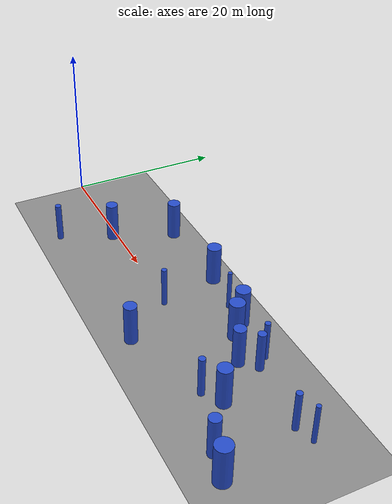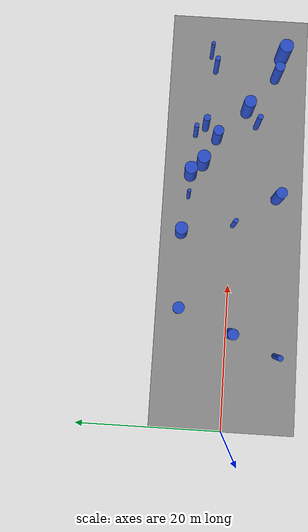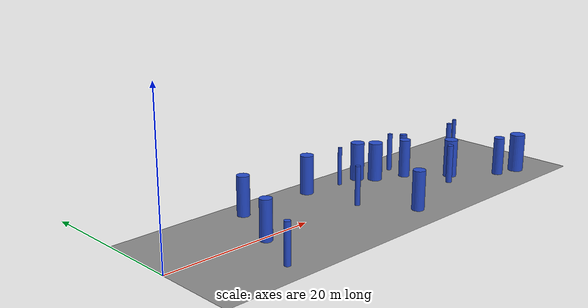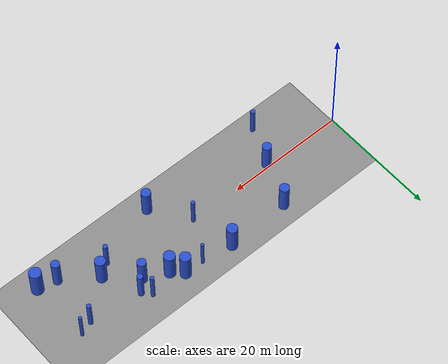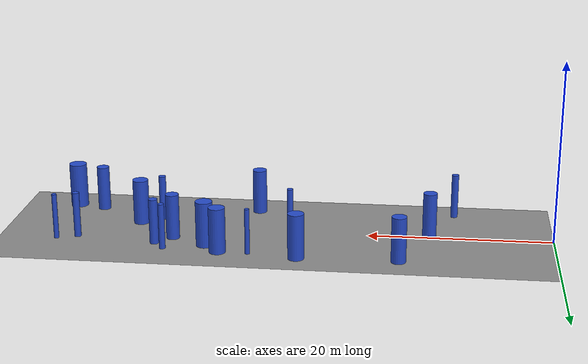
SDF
<sdf version="1.7">
 <world name="forest_randomization_v1">
  <gravity>0 0 -9.8</gravity>
  <light name="sun" type="directional">
   <pose>30 0 20 0 -0 0</pose>
   <diffuse>0.8 0.8 0.8 1</diffuse>
   <specular>0.2 0.2 0.2 1</specular>
   <direction>-0.5 0.5 -1</direction>
   <attenuation><range>10</range></attenuation>
   <spot><inner_angle>0</inner_angle><outer_angle>0</outer_angle><falloff>0</falloff></spot>
  </light>
  <model name="forest_ground_60x20">
   <static>1</static>
   <pose>30 0 0 0 -0 0</pose>
   <link name="link">
    <collision name="collision">
     <geometry><plane><normal>0 0 1</normal><size>60 20</size></plane></geometry>
    </collision>
    <visual name="visual">
     <cast_shadows>0</cast_shadows>
     <geometry><plane><normal>0 0 1</normal><size>60 20</size></plane></geometry>
     <material><ambient>0.45 0.45 0.45 1</ambient><diffuse>0.55 0.55 0.55 1</diffuse></material>
    </visual>
   </link>
  </model>
  <physics name="default_physics" type="ode">
   <max_step_size>0.001</max_step_size>
   <real_time_update_rate>1000</real_time_update_rate>
   <real_time_factor>1</real_time_factor>
  </physics>
  <scene>
   <ambient>0.4 0.4 0.4 1</ambient>
   <background>0.7 0.7 0.7 1</background>
   <shadows>1</shadows>
   <grid>1</grid>
  </scene>
  <magnetic_field>6e-06 2.3e-05 -4.2e-05</magnetic_field>
  <atmosphere type="adiabatic"/>
  <spherical_coordinates>
   <surface_model>EARTH_WGS84</surface_model>
   <latitude_deg>0</latitude_deg>
   <longitude_deg>0</longitude_deg>
   <elevation>0</elevation>
   <heading_deg>0</heading_deg>
  </spherical_coordinates>
  <model name="sparse_0">
   <static>0</static>
   <link name="link">
    <inertial>
     <mass>2</mass>
     <inertia><ixx>4.24086</ixx><ixy>0</ixy><ixz>0</ixz><iyy>4.24086</iyy><iyz>0</iyz><izz>0.148381</izz></inertia>
    </inertial>
    <collision name="collision">
     <geometry><cylinder><length>5</length><radius>0.385202</radius></cylinder></geometry>
     <surface><contact><collide_without_contact>1</collide_without_contact></contact></surface>
    </collision>
    <visual name="visual">
     <geometry><cylinder><length>5</length><radius>0.385202</radius></cylinder></geometry>
     <material>
      <script><uri>file://media/materials/scripts/gazebo.material</uri><name>Gazebo/Blue</name></script>
     </material>
    </visual>
    <gravity>0</gravity>
   </link>
   <pose>10.6623 -6.90709 2.5 0 -0 0</pose>
  </model>
  <model name="sparse_1">
   <static>0</static>
   <link name="link">
    <inertial>
     <mass>2</mass>
     <inertia><ixx>4.44682</ixx><ixy>0</ixy><ixz>0</ixz><iyy>4.44682</iyy><iyz>0</iyz><izz>0.560312</izz></inertia>
    </inertial>
    <collision name="collision">
     <geometry><cylinder><length>5</length><radius>0.74854</radius></cylinder></geometry>
     <surface><contact><collide_without_contact>1</collide_without_contact></contact></surface>
    </collision>
    <visual name="visual">
     <geometry><cylinder><length>5</length><radius>0.74854</radius></cylinder></geometry>
     <material>
      <script><uri>file://media/materials/scripts/gazebo.material</uri><name>Gazebo/Blue</name></script>
     </material>
    </visual>
    <gravity>0</gravity>
   </link>
   <pose>13.3697 -0.588504 2.5 0 -0 0</pose>
  </model>
  <model name="sparse_2">
   <static>0</static>
   <link name="link">
    <inertial>
     <mass>2</mass>
     <inertia><ixx>4.48165</ixx><ixy>0</ixy><ixz>0</ixz><iyy>4.48165</iyy><iyz>0</iyz><izz>0.62996</izz></inertia>
    </inertial>
    <collision name="collision">
     <geometry><cylinder><length>5</length><radius>0.7937</radius></cylinder></geometry>
     <surface><contact><collide_without_contact>1</collide_without_contact></contact></surface>
    </collision>
    <visual name="visual">
     <geometry><cylinder><length>5</length><radius>0.7937</radius></cylinder></geometry>
     <material>
      <script><uri>file://media/materials/scripts/gazebo.material</uri><name>Gazebo/Blue</name></script>
     </material>
    </visual>
    <gravity>0</gravity>
   </link>
   <pose>16.4297 6.82053 2.5 0 -0 0</pose>
  </model>
  <model name="medium_3">
   <static>0</static>
   <link name="link">
    <inertial>
     <mass>2</mass>
     <inertia><ixx>4.22075</ixx><ixy>0</ixy><ixz>0</ixz><iyy>4.22075</iyy><iyz>0</iyz><izz>0.108163</izz></inertia>
    </inertial>
    <collision name="collision">
     <geometry><cylinder><length>5</length><radius>0.328881</radius></cylinder></geometry>
     <surface><contact><collide_without_contact>1</collide_without_contact></contact></surface>
    </collision>
    <visual name="visual">
     <geometry><cylinder><length>5</length><radius>0.328881</radius></cylinder></geometry>
     <material>
      <script><uri>file://media/materials/scripts/gazebo.material</uri><name>Gazebo/Blue</name></script>
     </material>
    </visual>
    <gravity>0</gravity>
   </link>
   <pose>28.5661 -0.233166 2.5 0 -0 0</pose>
  </model>
  <model name="medium_4">
   <static>0</static>
   <link name="link">
    <inertial>
     <mass>2</mass>
     <inertia>
      <ixx>4.20036</ixx>
      <ixy>0</ixy>
      <ixz>0</ixz>
      <iyy>4.20036</iyy>
      <iyz>0</iyz>
      <izz>0.0673847</izz>
     </inertia>
    </inertial>
    <collision name="collision">
     <geometry><cylinder><length>5</length><radius>0.259586</radius></cylinder></geometry>
     <surface><contact><collide_without_contact>1</collide_without_contact></contact></surface>
    </collision>
    <visual name="visual">
     <geometry><cylinder><length>5</length><radius>0.259586</radius></cylinder></geometry>
     <material>
      <script><uri>file://media/materials/scripts/gazebo.material</uri><name>Gazebo/Blue</name></script>
     </material>
    </visual>
    <gravity>0</gravity>
   </link>
   <pose>32.3171 6.34145 2.5 0 -0 0</pose>
  </model>
  <model name="medium_5">
   <static>0</static>
   <link name="link">
    <inertial>
     <mass>2</mass>
     <inertia><ixx>4.5448</ixx><ixy>0</ixy><ixz>0</ixz><iyy>4.5448</iyy><iyz>0</iyz><izz>0.756267</izz></inertia>
    </inertial>
    <collision name="collision">
     <geometry><cylinder><length>5</length><radius>0.869636</radius></cylinder></geometry>
     <surface><contact><collide_without_contact>1</collide_without_contact></contact></surface>
    </collision>
    <visual name="visual">
     <geometry><cylinder><length>5</length><radius>0.869636</radius></cylinder></geometry>
     <material>
      <script><uri>file://media/materials/scripts/gazebo.material</uri><name>Gazebo/Blue</name></script>
     </material>
    </visual>
    <gravity>0</gravity>
   </link>
   <pose>27.1004 7.06891 2.5 0 -0 0</pose>
  </model>
  <model name="medium_6">
   <static>0</static>
   <link name="link">
    <inertial>
     <mass>2</mass>
     <inertia><ixx>4.56102</ixx><ixy>0</ixy><ixz>0</ixz><iyy>4.56102</iyy><iyz>0</iyz><izz>0.788715</izz></inertia>
    </inertial>
    <collision name="collision">
     <geometry><cylinder><length>5</length><radius>0.888096</radius></cylinder></geometry>
     <surface><contact><collide_without_contact>1</collide_without_contact></contact></surface>
    </collision>
    <visual name="visual">
     <geometry><cylinder><length>5</length><radius>0.888096</radius></cylinder></geometry>
     <material>
      <script><uri>file://media/materials/scripts/gazebo.material</uri><name>Gazebo/Blue</name></script>
     </material>
    </visual>
    <gravity>0</gravity>
   </link>
   <pose>35.541 6.23533 2.5 0 -0 0</pose>
  </model>
  <model name="medium_7">
   <static>0</static>
   <link name="link">
    <inertial>
     <mass>2</mass>
     <inertia><ixx>4.47503</ixx><ixy>0</ixy><ixz>0</ixz><iyy>4.47503</iyy><iyz>0</iyz><izz>0.61673</izz></inertia>
    </inertial>
    <collision name="collision">
     <geometry><cylinder><length>5</length><radius>0.785321</radius></cylinder></geometry>
     <surface><contact><collide_without_contact>1</collide_without_contact></contact></surface>
    </collision>
    <visual name="visual">
     <geometry><cylinder><length>5</length><radius>0.785321</radius></cylinder></geometry>
     <material>
      <script><uri>file://media/materials/scripts/gazebo.material</uri><name>Gazebo/Blue</name></script>
     </material>
    </visual>
    <gravity>0</gravity>
   </link>
   <pose>32.7404 -6.26022 2.5 0 -0 0</pose>
  </model>
  <model name="medium_8">
   <static>0</static>
   <link name="link">
    <inertial>
     <mass>2</mass>
     <inertia><ixx>4.59026</ixx><ixy>0</ixy><ixz>0</ixz><iyy>4.59026</iyy><iyz>0</iyz><izz>0.847188</izz></inertia>
    </inertial>
    <collision name="collision">
     <geometry><cylinder><length>5</length><radius>0.920428</radius></cylinder></geometry>
     <surface><contact><collide_without_contact>1</collide_without_contact></contact></surface>
    </collision>
    <visual name="visual">
     <geometry><cylinder><length>5</length><radius>0.920428</radius></cylinder></geometry>
     <material>
      <script><uri>file://media/materials/scripts/gazebo.material</uri><name>Gazebo/Blue</name></script>
     </material>
    </visual>
    <gravity>0</gravity>
   </link>
   <pose>37.1998 4.56622 2.5 0 -0 0</pose>
  </model>
  <model name="dense_9">
   <static>0</static>
   <link name="link">
    <inertial>
     <mass>2</mass>
     <inertia><ixx>4.40523</ixx><ixy>0</ixy><ixz>0</ixz><iyy>4.40523</iyy><iyz>0</iyz><izz>0.477135</izz></inertia>
    </inertial>
    <collision name="collision">
     <geometry><cylinder><length>5</length><radius>0.690749</radius></cylinder></geometry>
     <surface><contact><collide_without_contact>1</collide_without_contact></contact></surface>
    </collision>
    <visual name="visual">
     <geometry><cylinder><length>5</length><radius>0.690749</radius></cylinder></geometry>
     <material>
      <script><uri>file://media/materials/scripts/gazebo.material</uri><name>Gazebo/Blue</name></script>
     </material>
    </visual>
    <gravity>0</gravity>
   </link>
   <pose>50.7254 -5.35861 2.5 0 -0 0</pose>
  </model>
  <model name="dense_10">
   <static>0</static>
   <link name="link">
    <inertial>
     <mass>2</mass>
     <inertia><ixx>4.42894</ixx><ixy>0</ixy><ixz>0</ixz><iyy>4.42894</iyy><iyz>0</iyz><izz>0.524539</izz></inertia>
    </inertial>
    <collision name="collision">
     <geometry><cylinder><length>5</length><radius>0.72425</radius></cylinder></geometry>
     <surface><contact><collide_without_contact>1</collide_without_contact></contact></surface>
    </collision>
    <visual name="visual">
     <geometry><cylinder><length>5</length><radius>0.72425</radius></cylinder></geometry>
     <material>
      <script><uri>file://media/materials/scripts/gazebo.material</uri><name>Gazebo/Blue</name></script>
     </material>
    </visual>
    <gravity>0</gravity>
   </link>
   <pose>41.0018 2.76016 2.5 0 -0 0</pose>
  </model>
  <model name="dense_11">
   <static>0</static>
   <link name="link">
    <inertial>
     <mass>2</mass>
     <inertia><ixx>4.64447</ixx><ixy>0</ixy><ixz>0</ixz><iyy>4.64447</iyy><iyz>0</iyz><izz>0.95561</izz></inertia>
    </inertial>
    <collision name="collision">
     <geometry><cylinder><length>5</length><radius>0.977553</radius></cylinder></geometry>
     <surface><contact><collide_without_contact>1</collide_without_contact></contact></surface>
    </collision>
    <visual name="visual">
     <geometry><cylinder><length>5</length><radius>0.977553</radius></cylinder></geometry>
     <material>
      <script><uri>file://media/materials/scripts/gazebo.material</uri><name>Gazebo/Blue</name></script>
     </material>
    </visual>
    <gravity>0</gravity>
   </link>
   <pose>53.8735 -6.1322 2.5 0 -0 0</pose>
  </model>
  <model name="dense_12">
   <static>0</static>
   <link name="link">
    <inertial>
     <mass>2</mass>
     <inertia><ixx>4.28539</ixx><ixy>0</ixy><ixz>0</ixz><iyy>4.28539</iyy><iyz>0</iyz><izz>0.237437</izz></inertia>
    </inertial>
    <collision name="collision">
     <geometry><cylinder><length>5</length><radius>0.487275</radius></cylinder></geometry>
     <surface><contact><collide_without_contact>1</collide_without_contact></contact></surface>
    </collision>
    <visual name="visual">
     <geometry><cylinder><length>5</length><radius>0.487275</radius></cylinder></geometry>
     <material>
      <script><uri>file://media/materials/scripts/gazebo.material</uri><name>Gazebo/Blue</name></script>
     </material>
    </visual>
    <gravity>0</gravity>
   </link>
   <pose>42.7021 4.44965 2.5 0 -0 0</pose>
  </model>
  <model name="dense_13">
   <static>0</static>
   <link name="link">
    <inertial>
     <mass>2</mass>
     <inertia>
      <ixx>4.20281</ixx>
      <ixy>0</ixy>
      <ixz>0</ixz>
      <iyy>4.20281</iyy>
      <iyz>0</iyz>
      <izz>0.0722867</izz>
     </inertia>
    </inertial>
    <collision name="collision">
     <geometry><cylinder><length>5</length><radius>0.268862</radius></cylinder></geometry>
     <surface><contact><collide_without_contact>1</collide_without_contact></contact></surface>
    </collision>
    <visual name="visual">
     <geometry><cylinder><length>5</length><radius>0.268862</radius></cylinder></geometry>
     <material>
      <script><uri>file://media/materials/scripts/gazebo.material</uri><name>Gazebo/Blue</name></script>
     </material>
    </visual>
    <gravity>0</gravity>
   </link>
   <pose>53.5926 4.14367 2.5 0 -0 0</pose>
  </model>
  <model name="dense_14">
   <static>0</static>
   <link name="link">
    <inertial>
     <mass>2</mass>
     <inertia><ixx>4.53966</ixx><ixy>0</ixy><ixz>0</ixz><iyy>4.53966</iyy><iyz>0</iyz><izz>0.745989</izz></inertia>
    </inertial>
    <collision name="collision">
     <geometry><cylinder><length>5</length><radius>0.863707</radius></cylinder></geometry>
     <surface><contact><collide_without_contact>1</collide_without_contact></contact></surface>
    </collision>
    <visual name="visual">
     <geometry><cylinder><length>5</length><radius>0.863707</radius></cylinder></geometry>
     <material>
      <script><uri>file://media/materials/scripts/gazebo.material</uri><name>Gazebo/Blue</name></script>
     </material>
    </visual>
    <gravity>0</gravity>
   </link>
   <pose>45.4378 -1.4254 2.5 0 -0 0</pose>
  </model>
  <model name="dense_15">
   <static>0</static>
   <link name="link">
    <inertial>
     <mass>2</mass>
     <inertia><ixx>4.24361</ixx><ixy>0</ixy><ixz>0</ixz><iyy>4.24361</iyy><iyz>0</iyz><izz>0.153881</izz></inertia>
    </inertial>
    <collision name="collision">
     <geometry><cylinder><length>5</length><radius>0.392277</radius></cylinder></geometry>
     <surface><contact><collide_without_contact>1</collide_without_contact></contact></surface>
    </collision>
    <visual name="visual">
     <geometry><cylinder><length>5</length><radius>0.392277</radius></cylinder></geometry>
     <material>
      <script><uri>file://media/materials/scripts/gazebo.material</uri><name>Gazebo/Blue</name></script>
     </material>
    </visual>
    <gravity>0</gravity>
   </link>
   <pose>43.2924 -2.89922 2.5 0 -0 0</pose>
  </model>
  <model name="dense_16">
   <static>0</static>
   <link name="link">
    <inertial>
     <mass>2</mass>
     <inertia><ixx>4.22236</ixx><ixy>0</ixy><ixz>0</ixz><iyy>4.22236</iyy><iyz>0</iyz><izz>0.111386</izz></inertia>
    </inertial>
    <collision name="collision">
     <geometry><cylinder><length>5</length><radius>0.333746</radius></cylinder></geometry>
     <surface><contact><collide_without_contact>1</collide_without_contact></contact></surface>
    </collision>
    <visual name="visual">
     <geometry><cylinder><length>5</length><radius>0.333746</radius></cylinder></geometry>
     <material>
      <script><uri>file://media/materials/scripts/gazebo.material</uri><name>Gazebo/Blue</name></script>
     </material>
    </visual>
    <gravity>0</gravity>
   </link>
   <pose>41.537 5.82407 2.5 0 -0 0</pose>
  </model>
  <model name="dense_17">
   <static>0</static>
   <link name="link">
    <inertial>
     <mass>2</mass>
     <inertia><ixx>4.23378</ixx><ixy>0</ixy><ixz>0</ixz><iyy>4.23378</iyy><iyz>0</iyz><izz>0.134219</izz></inertia>
    </inertial>
    <collision name="collision">
     <geometry><cylinder><length>5</length><radius>0.366359</radius></cylinder></geometry>
     <surface><contact><collide_without_contact>1</collide_without_contact></contact></surface>
    </collision>
    <visual name="visual">
     <geometry><cylinder><length>5</length><radius>0.366359</radius></cylinder></geometry>
     <material>
      <script><uri>file://media/materials/scripts/gazebo.material</uri><name>Gazebo/Blue</name></script>
     </material>
    </visual>
    <gravity>0</gravity>
   </link>
   <pose>51.4211 3.40361 2.5 0 -0 0</pose>
  </model>
 </world>
</sdf>
